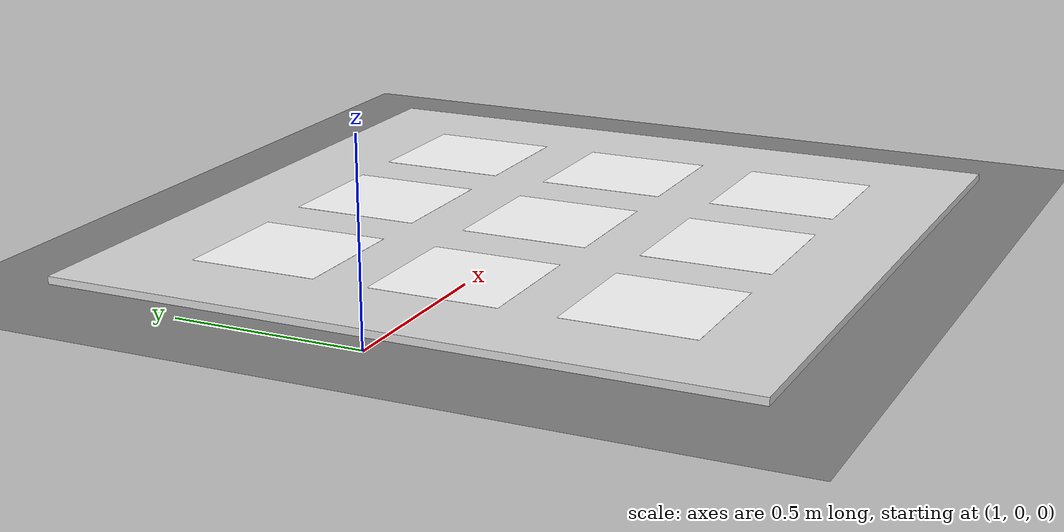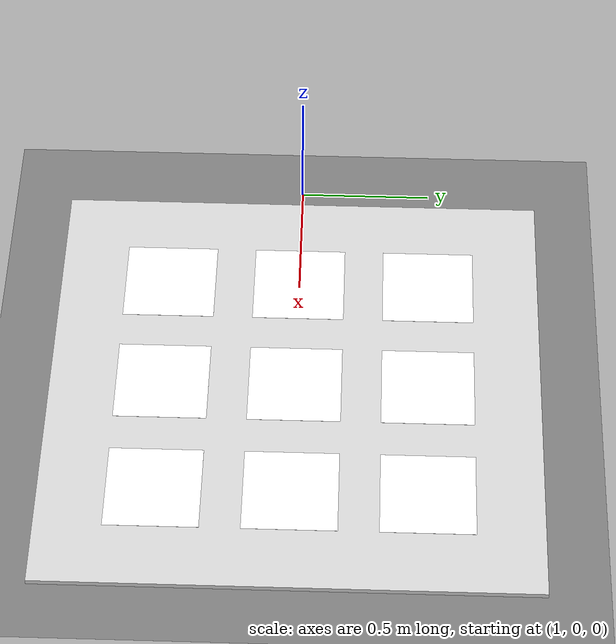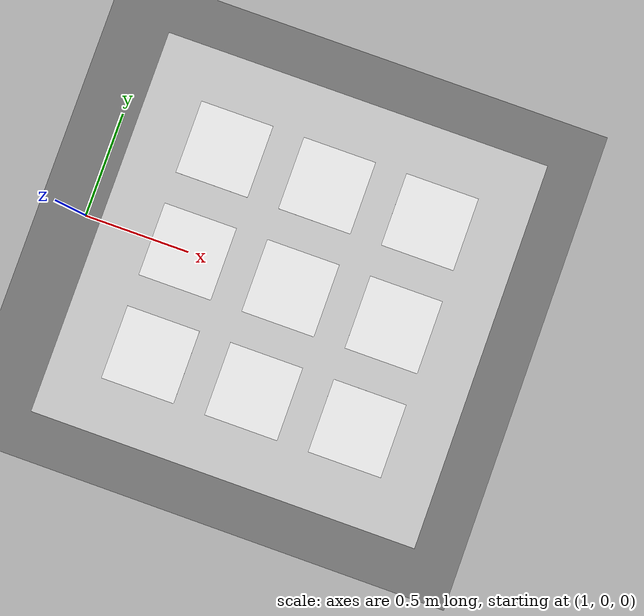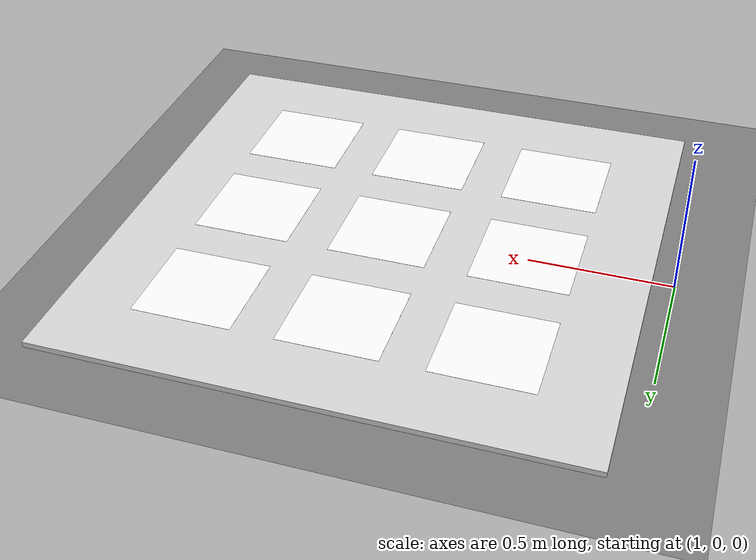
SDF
<sdf version="1.9">
 <world name="iris_aruco_4tags">
  <physics name="1ms" type="ignore">
   <max_step_size>0.001</max_step_size>
   <real_time_factor>1.0</real_time_factor>
   <real_time_update_rate>1000</real_time_update_rate>
  </physics>
  <plugin filename="gz-sim-physics-system" name="gz::sim::systems::Physics"/>
  <plugin filename="gz-sim-sensors-system" name="gz::sim::systems::Sensors">
   <render_engine>ogre2</render_engine>
  </plugin>
  <plugin filename="gz-sim-user-commands-system" name="gz::sim::systems::UserCommands"/>
  <plugin filename="gz-sim-scene-broadcaster-system" name="gz::sim::systems::SceneBroadcaster"/>
  <plugin filename="gz-sim-imu-system" name="gz::sim::systems::Imu"/>
  <plugin filename="gz-sim-navsat-system" name="gz::sim::systems::NavSat"/>
  <spherical_coordinates>
   <latitude_deg>-35.363262</latitude_deg>
   <longitude_deg>149.165237</longitude_deg>
   <elevation>584</elevation>
   <heading_deg>0</heading_deg>
   <surface_model>EARTH_WGS84</surface_model>
  </spherical_coordinates>
  <light type="directional" name="sun">
   <cast_shadows>false</cast_shadows>
   <pose>0 0 10 0 0 0</pose>
   <diffuse>0.8 0.8 0.8 1</diffuse>
   <specular>0.8 0.8 0.8 1</specular>
   <direction>-0.5 0.1 -0.9</direction>
  </light>
  <model name="ground_plane">
   <static>true</static>
   <link name="link">
    <collision name="collision">
     <geometry><plane><normal>0 0 1</normal><size>100 100</size></plane></geometry>
    </collision>
    <visual name="visual">
     <geometry><plane><normal>0 0 1</normal><size>100 100</size></plane></geometry>
     <material><ambient>0.5 0.5 0.5 1</ambient><diffuse>0.5 0.5 0.5 1</diffuse></material>
    </visual>
   </link>
  </model>
  <include><uri>model://aruco_pad</uri><pose>2.0 0 0.01 0 0 0</pose></include>
 </world>
</sdf>

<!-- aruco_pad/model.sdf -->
<sdf version="1.9">
  <model name="aruco_pad">
    <static>true</static>
    <link name="link">
      <!-- 1.85 m x 1.85 m board -->
      <visual name="board">
        <geometry>
          <box>
            <size>1.85 1.85 0.02</size>
          </box>
        </geometry>
        <material>
          <ambient>0.85 0.85 0.85 1</ambient>
          <diffuse>0.85 0.85 0.85 1</diffuse>
        </material>
      </visual>
      <collision name="collision">
        <geometry>
          <box>
            <size>1.85 1.85 0.02</size>
          </box>
        </geometry>
      </collision>

      <!-- 3 x 3 grid of 5x5_1000 markers (0.35 m each) -->
      <visual name="marker_0">
        <pose>-0.5 0.5 0.011 0 0 0</pose>
        <geometry><plane><normal>0 0 1</normal><size>0.35 0.35</size></plane></geometry>
        <material>
          <ambient>1 1 1 1</ambient><diffuse>1 1 1 1</diffuse>
          <pbr><metal><albedo_map>model://aruco_pad/materials/textures/5x5_1000-0.png</albedo_map></metal></pbr>
        </material>
      </visual>
      <visual name="marker_1">
        <pose>0 0.5 0.011 0 0 0</pose>
        <geometry><plane><normal>0 0 1</normal><size>0.35 0.35</size></plane></geometry>
        <material>
          <ambient>1 1 1 1</ambient><diffuse>1 1 1 1</diffuse>
          <pbr><metal><albedo_map>model://aruco_pad/materials/textures/5x5_1000-1.png</albedo_map></metal></pbr>
        </material>
      </visual>
      <visual name="marker_2">
        <pose>0.5 0.5 0.011 0 0 0</pose>
        <geometry><plane><normal>0 0 1</normal><size>0.35 0.35</size></plane></geometry>
        <material>
          <ambient>1 1 1 1</ambient><diffuse>1 1 1 1</diffuse>
          <pbr><metal><albedo_map>model://aruco_pad/materials/textures/5x5_1000-2.png</albedo_map></metal></pbr>
        </material>
      </visual>
      <visual name="marker_3">
        <pose>-0.5 0 0.011 0 0 0</pose>
        <geometry><plane><normal>0 0 1</normal><size>0.35 0.35</size></plane></geometry>
        <material>
          <ambient>1 1 1 1</ambient><diffuse>1 1 1 1</diffuse>
          <pbr><metal><albedo_map>model://aruco_pad/materials/textures/5x5_1000-3.png</albedo_map></metal></pbr>
        </material>
      </visual>
      <visual name="marker_4">
        <pose>0 0 0.011 0 0 0</pose>
        <geometry><plane><normal>0 0 1</normal><size>0.35 0.35</size></plane></geometry>
        <material>
          <ambient>1 1 1 1</ambient><diffuse>1 1 1 1</diffuse>
          <pbr><metal><albedo_map>model://aruco_pad/materials/textures/5x5_1000-4.png</albedo_map></metal></pbr>
        </material>
      </visual>
      <visual name="marker_5">
        <pose>0.5 0 0.011 0 0 0</pose>
        <geometry><plane><normal>0 0 1</normal><size>0.35 0.35</size></plane></geometry>
        <material>
          <ambient>1 1 1 1</ambient><diffuse>1 1 1 1</diffuse>
          <pbr><metal><albedo_map>model://aruco_pad/materials/textures/5x5_1000-5.png</albedo_map></metal></pbr>
        </material>
      </visual>
      <visual name="marker_6">
        <pose>-0.5 -0.5 0.011 0 0 0</pose>
        <geometry><plane><normal>0 0 1</normal><size>0.35 0.35</size></plane></geometry>
        <material>
          <ambient>1 1 1 1</ambient><diffuse>1 1 1 1</diffuse>
          <pbr><metal><albedo_map>model://aruco_pad/materials/textures/5x5_1000-6.png</albedo_map></metal></pbr>
        </material>
      </visual>
      <visual name="marker_7">
        <pose>0 -0.5 0.011 0 0 0</pose>
        <geometry><plane><normal>0 0 1</normal><size>0.35 0.35</size></plane></geometry>
        <material>
          <ambient>1 1 1 1</ambient><diffuse>1 1 1 1</diffuse>
          <pbr><metal><albedo_map>model://aruco_pad/materials/textures/5x5_1000-7.png</albedo_map></metal></pbr>
        </material>
      </visual>
      <visual name="marker_8">
        <pose>0.5 -0.5 0.011 0 0 0</pose>
        <geometry><plane><normal>0 0 1</normal><size>0.35 0.35</size></plane></geometry>
        <material>
          <ambient>1 1 1 1</ambient><diffuse>1 1 1 1</diffuse>
          <pbr><metal><albedo_map>model://aruco_pad/materials/textures/5x5_1000-8.png</albedo_map></metal></pbr>
        </material>
      </visual>
    </link>
  </model>
</sdf>
